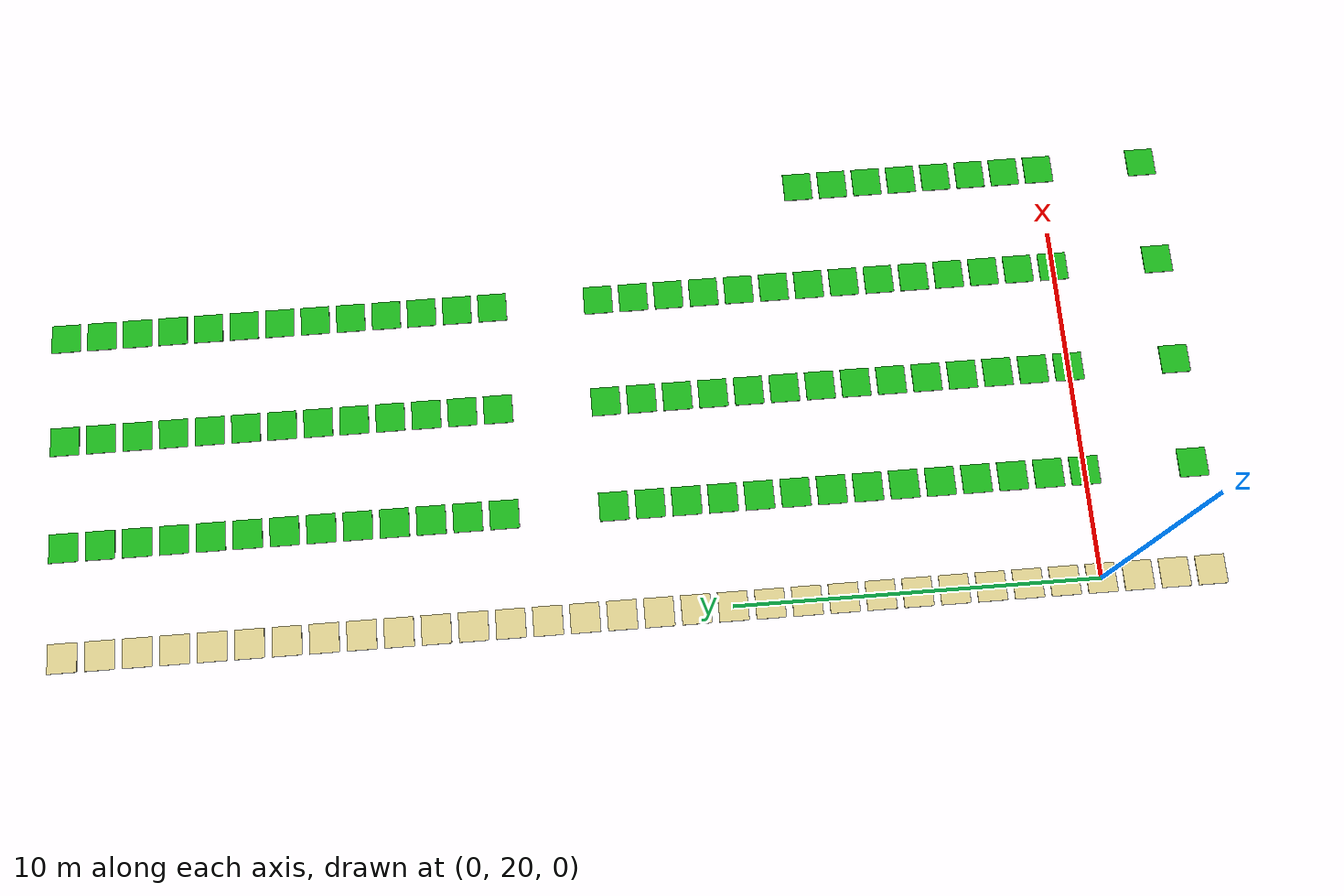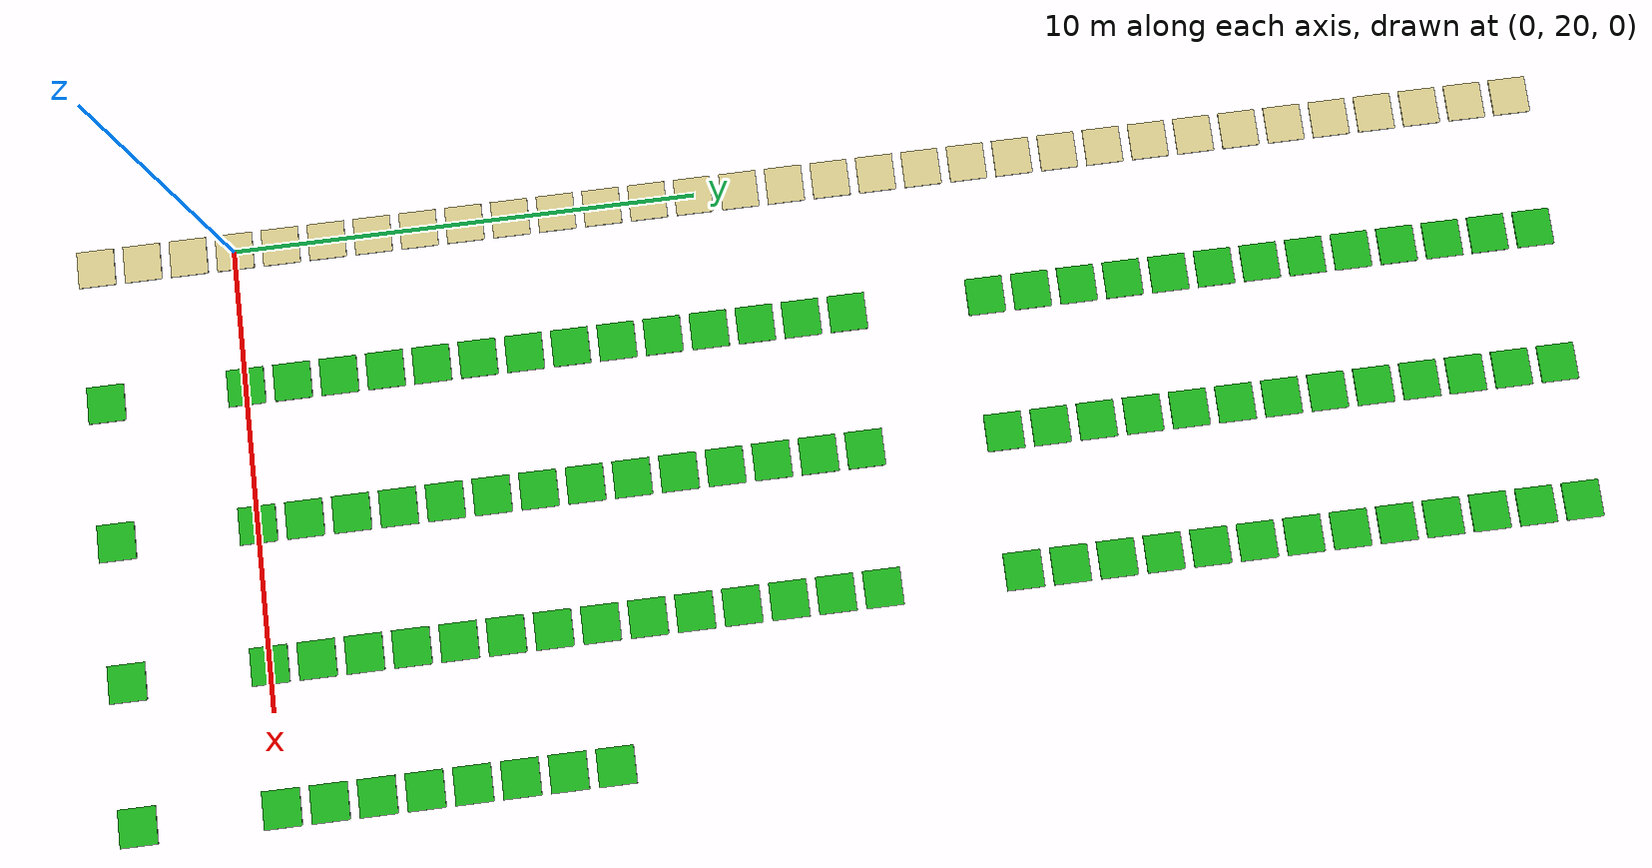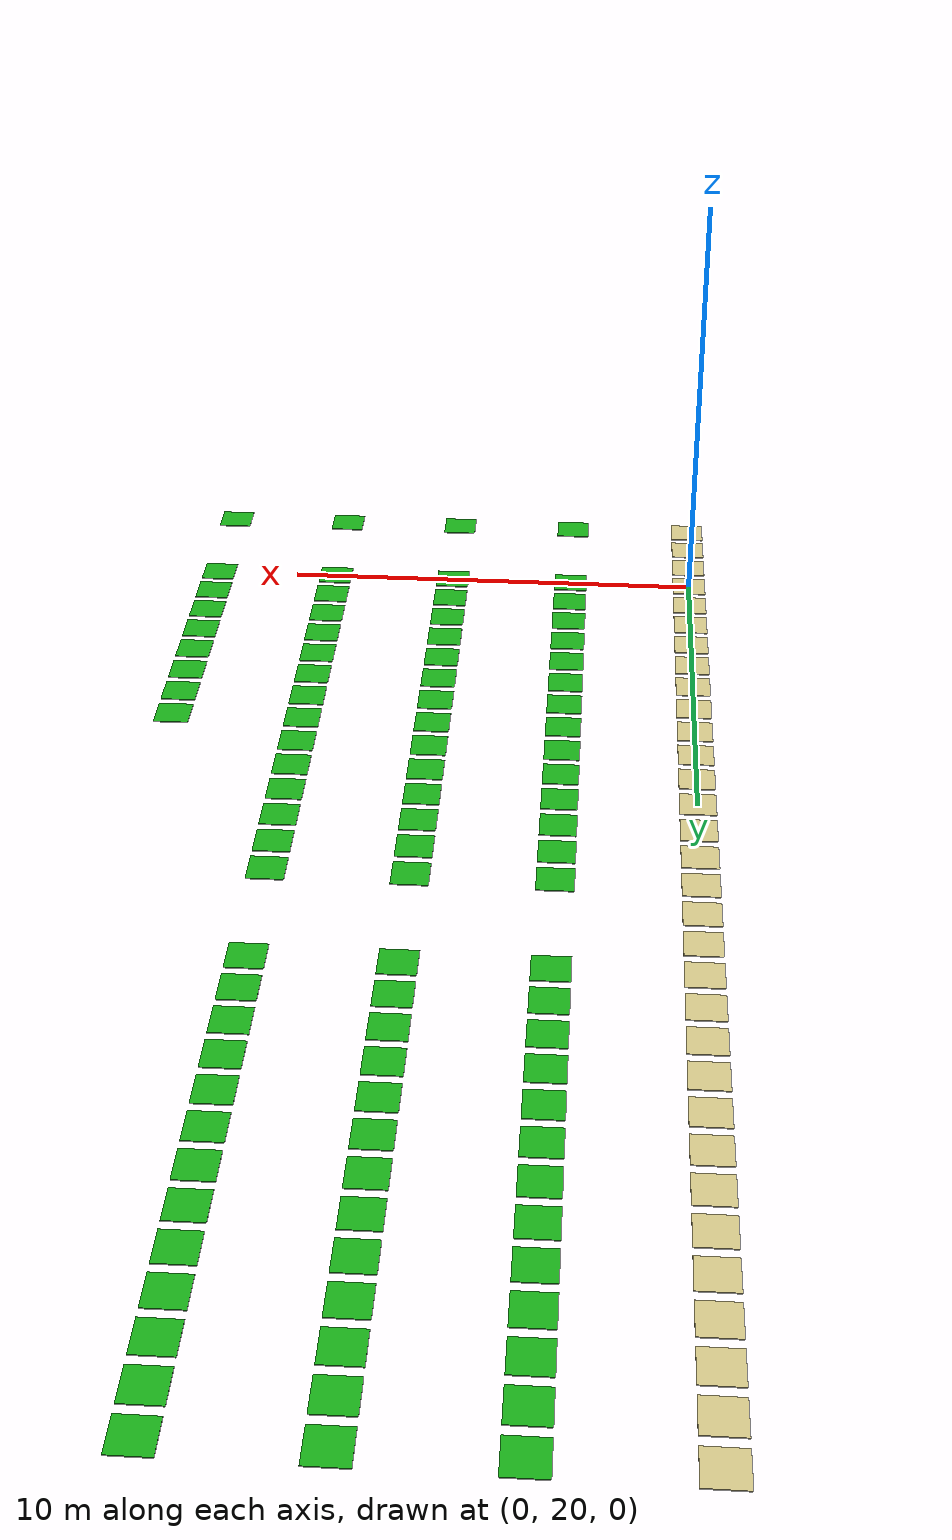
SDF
<sdf version="1.10">
 <world name="my_map">
  <model name="staging_107">
   <static>true</static>
   <pose>0.0
        48.0
        0.02
        0 0 0</pose>
   <link name="link">
    <visual name="visual">
     <geometry><box><size>0.8
                0.8
                0.02</size></box></geometry>
     <material><ambient>0.85 0.80 0.55 1</ambient><diffuse>0.85 0.80 0.55 1</diffuse></material>
    </visual>
   </link>
  </model>
  <model name="shelf_1176">
   <static>true</static>
   <pose>3.0
        48.0
        0.02
        0 0 0</pose>
   <link name="link">
    <visual name="visual">
     <geometry><box><size>0.8
                0.8
                0.02</size></box></geometry>
     <material><ambient>0.10 0.70 0.10 1</ambient><diffuse>0.10 0.70 0.10 1</diffuse></material>
    </visual>
   </link>
  </model>
  <model name="shelf_1177">
   <static>true</static>
   <pose>6.0
        48.0
        0.02
        0 0 0</pose>
   <link name="link">
    <visual name="visual">
     <geometry><box><size>0.8
                0.8
                0.02</size></box></geometry>
     <material><ambient>0.10 0.70 0.10 1</ambient><diffuse>0.10 0.70 0.10 1</diffuse></material>
    </visual>
   </link>
  </model>
  <model name="shelf_1178">
   <static>true</static>
   <pose>9.0
        48.0
        0.02
        0 0 0</pose>
   <link name="link">
    <visual name="visual">
     <geometry><box><size>0.8
                0.8
                0.02</size></box></geometry>
     <material><ambient>0.10 0.70 0.10 1</ambient><diffuse>0.10 0.70 0.10 1</diffuse></material>
    </visual>
   </link>
  </model>
  <model name="staging_109">
   <static>true</static>
   <pose>0.0
        47.0
        0.02
        0 0 0</pose>
   <link name="link">
    <visual name="visual">
     <geometry><box><size>0.8
                0.8
                0.02</size></box></geometry>
     <material><ambient>0.85 0.80 0.55 1</ambient><diffuse>0.85 0.80 0.55 1</diffuse></material>
    </visual>
   </link>
  </model>
  <model name="shelf_1201">
   <static>true</static>
   <pose>3.0
        47.0
        0.02
        0 0 0</pose>
   <link name="link">
    <visual name="visual">
     <geometry><box><size>0.8
                0.8
                0.02</size></box></geometry>
     <material><ambient>0.10 0.70 0.10 1</ambient><diffuse>0.10 0.70 0.10 1</diffuse></material>
    </visual>
   </link>
  </model>
  <model name="shelf_1202">
   <static>true</static>
   <pose>6.0
        47.0
        0.02
        0 0 0</pose>
   <link name="link">
    <visual name="visual">
     <geometry><box><size>0.8
                0.8
                0.02</size></box></geometry>
     <material><ambient>0.10 0.70 0.10 1</ambient><diffuse>0.10 0.70 0.10 1</diffuse></material>
    </visual>
   </link>
  </model>
  <model name="shelf_1203">
   <static>true</static>
   <pose>9.0
        47.0
        0.02
        0 0 0</pose>
   <link name="link">
    <visual name="visual">
     <geometry><box><size>0.8
                0.8
                0.02</size></box></geometry>
     <material><ambient>0.10 0.70 0.10 1</ambient><diffuse>0.10 0.70 0.10 1</diffuse></material>
    </visual>
   </link>
  </model>
  <model name="staging_111">
   <static>true</static>
   <pose>0.0
        46.0
        0.02
        0 0 0</pose>
   <link name="link">
    <visual name="visual">
     <geometry><box><size>0.8
                0.8
                0.02</size></box></geometry>
     <material><ambient>0.85 0.80 0.55 1</ambient><diffuse>0.85 0.80 0.55 1</diffuse></material>
    </visual>
   </link>
  </model>
  <model name="shelf_1226">
   <static>true</static>
   <pose>3.0
        46.0
        0.02
        0 0 0</pose>
   <link name="link">
    <visual name="visual">
     <geometry><box><size>0.8
                0.8
                0.02</size></box></geometry>
     <material><ambient>0.10 0.70 0.10 1</ambient><diffuse>0.10 0.70 0.10 1</diffuse></material>
    </visual>
   </link>
  </model>
  <model name="shelf_1227">
   <static>true</static>
   <pose>6.0
        46.0
        0.02
        0 0 0</pose>
   <link name="link">
    <visual name="visual">
     <geometry><box><size>0.8
                0.8
                0.02</size></box></geometry>
     <material><ambient>0.10 0.70 0.10 1</ambient><diffuse>0.10 0.70 0.10 1</diffuse></material>
    </visual>
   </link>
  </model>
  <model name="shelf_1228">
   <static>true</static>
   <pose>9.0
        46.0
        0.02
        0 0 0</pose>
   <link name="link">
    <visual name="visual">
     <geometry><box><size>0.8
                0.8
                0.02</size></box></geometry>
     <material><ambient>0.10 0.70 0.10 1</ambient><diffuse>0.10 0.70 0.10 1</diffuse></material>
    </visual>
   </link>
  </model>
  <model name="staging_113">
   <static>true</static>
   <pose>0.0
        45.0
        0.02
        0 0 0</pose>
   <link name="link">
    <visual name="visual">
     <geometry><box><size>0.8
                0.8
                0.02</size></box></geometry>
     <material><ambient>0.85 0.80 0.55 1</ambient><diffuse>0.85 0.80 0.55 1</diffuse></material>
    </visual>
   </link>
  </model>
  <model name="shelf_1251">
   <static>true</static>
   <pose>3.0
        45.0
        0.02
        0 0 0</pose>
   <link name="link">
    <visual name="visual">
     <geometry><box><size>0.8
                0.8
                0.02</size></box></geometry>
     <material><ambient>0.10 0.70 0.10 1</ambient><diffuse>0.10 0.70 0.10 1</diffuse></material>
    </visual>
   </link>
  </model>
  <model name="shelf_1252">
   <static>true</static>
   <pose>6.0
        45.0
        0.02
        0 0 0</pose>
   <link name="link">
    <visual name="visual">
     <geometry><box><size>0.8
                0.8
                0.02</size></box></geometry>
     <material><ambient>0.10 0.70 0.10 1</ambient><diffuse>0.10 0.70 0.10 1</diffuse></material>
    </visual>
   </link>
  </model>
  <model name="shelf_1253">
   <static>true</static>
   <pose>9.0
        45.0
        0.02
        0 0 0</pose>
   <link name="link">
    <visual name="visual">
     <geometry><box><size>0.8
                0.8
                0.02</size></box></geometry>
     <material><ambient>0.10 0.70 0.10 1</ambient><diffuse>0.10 0.70 0.10 1</diffuse></material>
    </visual>
   </link>
  </model>
  <model name="staging_115">
   <static>true</static>
   <pose>0.0
        44.0
        0.02
        0 0 0</pose>
   <link name="link">
    <visual name="visual">
     <geometry><box><size>0.8
                0.8
                0.02</size></box></geometry>
     <material><ambient>0.85 0.80 0.55 1</ambient><diffuse>0.85 0.80 0.55 1</diffuse></material>
    </visual>
   </link>
  </model>
  <model name="shelf_1276">
   <static>true</static>
   <pose>3.0
        44.0
        0.02
        0 0 0</pose>
   <link name="link">
    <visual name="visual">
     <geometry><box><size>0.8
                0.8
                0.02</size></box></geometry>
     <material><ambient>0.10 0.70 0.10 1</ambient><diffuse>0.10 0.70 0.10 1</diffuse></material>
    </visual>
   </link>
  </model>
  <model name="shelf_1277">
   <static>true</static>
   <pose>6.0
        44.0
        0.02
        0 0 0</pose>
   <link name="link">
    <visual name="visual">
     <geometry><box><size>0.8
                0.8
                0.02</size></box></geometry>
     <material><ambient>0.10 0.70 0.10 1</ambient><diffuse>0.10 0.70 0.10 1</diffuse></material>
    </visual>
   </link>
  </model>
  <model name="shelf_1278">
   <static>true</static>
   <pose>9.0
        44.0
        0.02
        0 0 0</pose>
   <link name="link">
    <visual name="visual">
     <geometry><box><size>0.8
                0.8
                0.02</size></box></geometry>
     <material><ambient>0.10 0.70 0.10 1</ambient><diffuse>0.10 0.70 0.10 1</diffuse></material>
    </visual>
   </link>
  </model>
  <model name="staging_117">
   <static>true</static>
   <pose>0.0
        43.0
        0.02
        0 0 0</pose>
   <link name="link">
    <visual name="visual">
     <geometry><box><size>0.8
                0.8
                0.02</size></box></geometry>
     <material><ambient>0.85 0.80 0.55 1</ambient><diffuse>0.85 0.80 0.55 1</diffuse></material>
    </visual>
   </link>
  </model>
  <model name="shelf_1301">
   <static>true</static>
   <pose>3.0
        43.0
        0.02
        0 0 0</pose>
   <link name="link">
    <visual name="visual">
     <geometry><box><size>0.8
                0.8
                0.02</size></box></geometry>
     <material><ambient>0.10 0.70 0.10 1</ambient><diffuse>0.10 0.70 0.10 1</diffuse></material>
    </visual>
   </link>
  </model>
  <model name="shelf_1302">
   <static>true</static>
   <pose>6.0
        43.0
        0.02
        0 0 0</pose>
   <link name="link">
    <visual name="visual">
     <geometry><box><size>0.8
                0.8
                0.02</size></box></geometry>
     <material><ambient>0.10 0.70 0.10 1</ambient><diffuse>0.10 0.70 0.10 1</diffuse></material>
    </visual>
   </link>
  </model>
  <model name="shelf_1303">
   <static>true</static>
   <pose>9.0
        43.0
        0.02
        0 0 0</pose>
   <link name="link">
    <visual name="visual">
     <geometry><box><size>0.8
                0.8
                0.02</size></box></geometry>
     <material><ambient>0.10 0.70 0.10 1</ambient><diffuse>0.10 0.70 0.10 1</diffuse></material>
    </visual>
   </link>
  </model>
  <model name="staging_119">
   <static>true</static>
   <pose>0.0
        42.0
        0.02
        0 0 0</pose>
   <link name="link">
    <visual name="visual">
     <geometry><box><size>0.8
                0.8
                0.02</size></box></geometry>
     <material><ambient>0.85 0.80 0.55 1</ambient><diffuse>0.85 0.80 0.55 1</diffuse></material>
    </visual>
   </link>
  </model>
  <model name="shelf_1326">
   <static>true</static>
   <pose>3.0
        42.0
        0.02
        0 0 0</pose>
   <link name="link">
    <visual name="visual">
     <geometry><box><size>0.8
                0.8
                0.02</size></box></geometry>
     <material><ambient>0.10 0.70 0.10 1</ambient><diffuse>0.10 0.70 0.10 1</diffuse></material>
    </visual>
   </link>
  </model>
  <model name="shelf_1327">
   <static>true</static>
   <pose>6.0
        42.0
        0.02
        0 0 0</pose>
   <link name="link">
    <visual name="visual">
     <geometry><box><size>0.8
                0.8
                0.02</size></box></geometry>
     <material><ambient>0.10 0.70 0.10 1</ambient><diffuse>0.10 0.70 0.10 1</diffuse></material>
    </visual>
   </link>
  </model>
  <model name="shelf_1328">
   <static>true</static>
   <pose>9.0
        42.0
        0.02
        0 0 0</pose>
   <link name="link">
    <visual name="visual">
     <geometry><box><size>0.8
                0.8
                0.02</size></box></geometry>
     <material><ambient>0.10 0.70 0.10 1</ambient><diffuse>0.10 0.70 0.10 1</diffuse></material>
    </visual>
   </link>
  </model>
  <model name="staging_121">
   <static>true</static>
   <pose>0.0
        41.0
        0.02
        0 0 0</pose>
   <link name="link">
    <visual name="visual">
     <geometry><box><size>0.8
                0.8
                0.02</size></box></geometry>
     <material><ambient>0.85 0.80 0.55 1</ambient><diffuse>0.85 0.80 0.55 1</diffuse></material>
    </visual>
   </link>
  </model>
  <model name="shelf_1351">
   <static>true</static>
   <pose>3.0
        41.0
        0.02
        0 0 0</pose>
   <link name="link">
    <visual name="visual">
     <geometry><box><size>0.8
                0.8
                0.02</size></box></geometry>
     <material><ambient>0.10 0.70 0.10 1</ambient><diffuse>0.10 0.70 0.10 1</diffuse></material>
    </visual>
   </link>
  </model>
  <model name="shelf_1352">
   <static>true</static>
   <pose>6.0
        41.0
        0.02
        0 0 0</pose>
   <link name="link">
    <visual name="visual">
     <geometry><box><size>0.8
                0.8
                0.02</size></box></geometry>
     <material><ambient>0.10 0.70 0.10 1</ambient><diffuse>0.10 0.70 0.10 1</diffuse></material>
    </visual>
   </link>
  </model>
  <model name="shelf_1353">
   <static>true</static>
   <pose>9.0
        41.0
        0.02
        0 0 0</pose>
   <link name="link">
    <visual name="visual">
     <geometry><box><size>0.8
                0.8
                0.02</size></box></geometry>
     <material><ambient>0.10 0.70 0.10 1</ambient><diffuse>0.10 0.70 0.10 1</diffuse></material>
    </visual>
   </link>
  </model>
  <model name="staging_123">
   <static>true</static>
   <pose>0.0
        40.0
        0.02
        0 0 0</pose>
   <link name="link">
    <visual name="visual">
     <geometry><box><size>0.8
                0.8
                0.02</size></box></geometry>
     <material><ambient>0.85 0.80 0.55 1</ambient><diffuse>0.85 0.80 0.55 1</diffuse></material>
    </visual>
   </link>
  </model>
  <model name="shelf_1376">
   <static>true</static>
   <pose>3.0
        40.0
        0.02
        0 0 0</pose>
   <link name="link">
    <visual name="visual">
     <geometry><box><size>0.8
                0.8
                0.02</size></box></geometry>
     <material><ambient>0.10 0.70 0.10 1</ambient><diffuse>0.10 0.70 0.10 1</diffuse></material>
    </visual>
   </link>
  </model>
  <model name="shelf_1377">
   <static>true</static>
   <pose>6.0
        40.0
        0.02
        0 0 0</pose>
   <link name="link">
    <visual name="visual">
     <geometry><box><size>0.8
                0.8
                0.02</size></box></geometry>
     <material><ambient>0.10 0.70 0.10 1</ambient><diffuse>0.10 0.70 0.10 1</diffuse></material>
    </visual>
   </link>
  </model>
  <model name="shelf_1378">
   <static>true</static>
   <pose>9.0
        40.0
        0.02
        0 0 0</pose>
   <link name="link">
    <visual name="visual">
     <geometry><box><size>0.8
                0.8
                0.02</size></box></geometry>
     <material><ambient>0.10 0.70 0.10 1</ambient><diffuse>0.10 0.70 0.10 1</diffuse></material>
    </visual>
   </link>
  </model>
  <model name="staging_125">
   <static>true</static>
   <pose>0.0
        39.0
        0.02
        0 0 0</pose>
   <link name="link">
    <visual name="visual">
     <geometry><box><size>0.8
                0.8
                0.02</size></box></geometry>
     <material><ambient>0.85 0.80 0.55 1</ambient><diffuse>0.85 0.80 0.55 1</diffuse></material>
    </visual>
   </link>
  </model>
  <model name="shelf_1401">
   <static>true</static>
   <pose>3.0
        39.0
        0.02
        0 0 0</pose>
   <link name="link">
    <visual name="visual">
     <geometry><box><size>0.8
                0.8
                0.02</size></box></geometry>
     <material><ambient>0.10 0.70 0.10 1</ambient><diffuse>0.10 0.70 0.10 1</diffuse></material>
    </visual>
   </link>
  </model>
  <model name="shelf_1402">
   <static>true</static>
   <pose>6.0
        39.0
        0.02
        0 0 0</pose>
   <link name="link">
    <visual name="visual">
     <geometry><box><size>0.8
                0.8
                0.02</size></box></geometry>
     <material><ambient>0.10 0.70 0.10 1</ambient><diffuse>0.10 0.70 0.10 1</diffuse></material>
    </visual>
   </link>
  </model>
  <model name="shelf_1403">
   <static>true</static>
   <pose>9.0
        39.0
        0.02
        0 0 0</pose>
   <link name="link">
    <visual name="visual">
     <geometry><box><size>0.8
                0.8
                0.02</size></box></geometry>
     <material><ambient>0.10 0.70 0.10 1</ambient><diffuse>0.10 0.70 0.10 1</diffuse></material>
    </visual>
   </link>
  </model>
  <model name="staging_127">
   <static>true</static>
   <pose>0.0
        38.0
        0.02
        0 0 0</pose>
   <link name="link">
    <visual name="visual">
     <geometry><box><size>0.8
                0.8
                0.02</size></box></geometry>
     <material><ambient>0.85 0.80 0.55 1</ambient><diffuse>0.85 0.80 0.55 1</diffuse></material>
    </visual>
   </link>
  </model>
  <model name="shelf_1426">
   <static>true</static>
   <pose>3.0
        38.0
        0.02
        0 0 0</pose>
   <link name="link">
    <visual name="visual">
     <geometry><box><size>0.8
                0.8
                0.02</size></box></geometry>
     <material><ambient>0.10 0.70 0.10 1</ambient><diffuse>0.10 0.70 0.10 1</diffuse></material>
    </visual>
   </link>
  </model>
  <model name="shelf_1427">
   <static>true</static>
   <pose>6.0
        38.0
        0.02
        0 0 0</pose>
   <link name="link">
    <visual name="visual">
     <geometry><box><size>0.8
                0.8
                0.02</size></box></geometry>
     <material><ambient>0.10 0.70 0.10 1</ambient><diffuse>0.10 0.70 0.10 1</diffuse></material>
    </visual>
   </link>
  </model>
  <model name="shelf_1428">
   <static>true</static>
   <pose>9.0
        38.0
        0.02
        0 0 0</pose>
   <link name="link">
    <visual name="visual">
     <geometry><box><size>0.8
                0.8
                0.02</size></box></geometry>
     <material><ambient>0.10 0.70 0.10 1</ambient><diffuse>0.10 0.70 0.10 1</diffuse></material>
    </visual>
   </link>
  </model>
  <model name="staging_129">
   <static>true</static>
   <pose>0.0
        37.0
        0.02
        0 0 0</pose>
   <link name="link">
    <visual name="visual">
     <geometry><box><size>0.8
                0.8
                0.02</size></box></geometry>
     <material><ambient>0.85 0.80 0.55 1</ambient><diffuse>0.85 0.80 0.55 1</diffuse></material>
    </visual>
   </link>
  </model>
  <model name="shelf_1451">
   <static>true</static>
   <pose>3.0
        37.0
        0.02
        0 0 0</pose>
   <link name="link">
    <visual name="visual">
     <geometry><box><size>0.8
                0.8
                0.02</size></box></geometry>
     <material><ambient>0.10 0.70 0.10 1</ambient><diffuse>0.10 0.70 0.10 1</diffuse></material>
    </visual>
   </link>
  </model>
  <model name="shelf_1452">
   <static>true</static>
   <pose>6.0
        37.0
        0.02
        0 0 0</pose>
   <link name="link">
    <visual name="visual">
     <geometry><box><size>0.8
                0.8
                0.02</size></box></geometry>
     <material><ambient>0.10 0.70 0.10 1</ambient><diffuse>0.10 0.70 0.10 1</diffuse></material>
    </visual>
   </link>
  </model>
  <model name="shelf_1453">
   <static>true</static>
   <pose>9.0
        37.0
        0.02
        0 0 0</pose>
   <link name="link">
    <visual name="visual">
     <geometry><box><size>0.8
                0.8
                0.02</size></box></geometry>
     <material><ambient>0.10 0.70 0.10 1</ambient><diffuse>0.10 0.70 0.10 1</diffuse></material>
    </visual>
   </link>
  </model>
  <model name="staging_131">
   <static>true</static>
   <pose>0.0
        36.0
        0.02
        0 0 0</pose>
   <link name="link">
    <visual name="visual">
     <geometry><box><size>0.8
                0.8
                0.02</size></box></geometry>
     <material><ambient>0.85 0.80 0.55 1</ambient><diffuse>0.85 0.80 0.55 1</diffuse></material>
    </visual>
   </link>
  </model>
  <model name="shelf_1476">
   <static>true</static>
   <pose>3.0
        36.0
        0.02
        0 0 0</pose>
   <link name="link">
    <visual name="visual">
     <geometry><box><size>0.8
                0.8
                0.02</size></box></geometry>
     <material><ambient>0.10 0.70 0.10 1</ambient><diffuse>0.10 0.70 0.10 1</diffuse></material>
    </visual>
   </link>
  </model>
  <model name="shelf_1477">
   <static>true</static>
   <pose>6.0
        36.0
        0.02
        0 0 0</pose>
   <link name="link">
    <visual name="visual">
     <geometry><box><size>0.8
                0.8
                0.02</size></box></geometry>
     <material><ambient>0.10 0.70 0.10 1</ambient><diffuse>0.10 0.70 0.10 1</diffuse></material>
    </visual>
   </link>
  </model>
  <model name="shelf_1478">
   <static>true</static>
   <pose>9.0
        36.0
        0.02
        0 0 0</pose>
   <link name="link">
    <visual name="visual">
     <geometry><box><size>0.8
                0.8
                0.02</size></box></geometry>
     <material><ambient>0.10 0.70 0.10 1</ambient><diffuse>0.10 0.70 0.10 1</diffuse></material>
    </visual>
   </link>
  </model>
  <model name="staging_133">
   <static>true</static>
   <pose>0.0
        35.0
        0.02
        0 0 0</pose>
   <link name="link">
    <visual name="visual">
     <geometry><box><size>0.8
                0.8
                0.02</size></box></geometry>
     <material><ambient>0.85 0.80 0.55 1</ambient><diffuse>0.85 0.80 0.55 1</diffuse></material>
    </visual>
   </link>
  </model>
  <model name="staging_135">
   <static>true</static>
   <pose>0.0
        34.0
        0.02
        0 0 0</pose>
   <link name="link">
    <visual name="visual">
     <geometry><box><size>0.8
                0.8
                0.02</size></box></geometry>
     <material><ambient>0.85 0.80 0.55 1</ambient><diffuse>0.85 0.80 0.55 1</diffuse></material>
    </visual>
   </link>
  </model>
  <model name="staging_137">
   <static>true</static>
   <pose>0.0
        33.0
        0.02
        0 0 0</pose>
   <link name="link">
    <visual name="visual">
     <geometry><box><size>0.8
                0.8
                0.02</size></box></geometry>
     <material><ambient>0.85 0.80 0.55 1</ambient><diffuse>0.85 0.80 0.55 1</diffuse></material>
    </visual>
   </link>
  </model>
  <model name="shelf_1501">
   <static>true</static>
   <pose>3.0
        33.0
        0.02
        0 0 0</pose>
   <link name="link">
    <visual name="visual">
     <geometry><box><size>0.8
                0.8
                0.02</size></box></geometry>
     <material><ambient>0.10 0.70 0.10 1</ambient><diffuse>0.10 0.70 0.10 1</diffuse></material>
    </visual>
   </link>
  </model>
  <model name="shelf_1502">
   <static>true</static>
   <pose>6.0
        33.0
        0.02
        0 0 0</pose>
   <link name="link">
    <visual name="visual">
     <geometry><box><size>0.8
                0.8
                0.02</size></box></geometry>
     <material><ambient>0.10 0.70 0.10 1</ambient><diffuse>0.10 0.70 0.10 1</diffuse></material>
    </visual>
   </link>
  </model>
  <model name="shelf_1503">
   <static>true</static>
   <pose>9.0
        33.0
        0.02
        0 0 0</pose>
   <link name="link">
    <visual name="visual">
     <geometry><box><size>0.8
                0.8
                0.02</size></box></geometry>
     <material><ambient>0.10 0.70 0.10 1</ambient><diffuse>0.10 0.70 0.10 1</diffuse></material>
    </visual>
   </link>
  </model>
  <model name="staging_139">
   <static>true</static>
   <pose>0.0
        32.0
        0.02
        0 0 0</pose>
   <link name="link">
    <visual name="visual">
     <geometry><box><size>0.8
                0.8
                0.02</size></box></geometry>
     <material><ambient>0.85 0.80 0.55 1</ambient><diffuse>0.85 0.80 0.55 1</diffuse></material>
    </visual>
   </link>
  </model>
  <model name="shelf_1526">
   <static>true</static>
   <pose>3.0
        32.0
        0.02
        0 0 0</pose>
   <link name="link">
    <visual name="visual">
     <geometry><box><size>0.8
                0.8
                0.02</size></box></geometry>
     <material><ambient>0.10 0.70 0.10 1</ambient><diffuse>0.10 0.70 0.10 1</diffuse></material>
    </visual>
   </link>
  </model>
  <model name="shelf_1527">
   <static>true</static>
   <pose>6.0
        32.0
        0.02
        0 0 0</pose>
   <link name="link">
    <visual name="visual">
     <geometry><box><size>0.8
                0.8
                0.02</size></box></geometry>
     <material><ambient>0.10 0.70 0.10 1</ambient><diffuse>0.10 0.70 0.10 1</diffuse></material>
    </visual>
   </link>
  </model>
  <model name="shelf_1528">
   <static>true</static>
   <pose>9.0
        32.0
        0.02
        0 0 0</pose>
   <link name="link">
    <visual name="visual">
     <geometry><box><size>0.8
                0.8
                0.02</size></box></geometry>
     <material><ambient>0.10 0.70 0.10 1</ambient><diffuse>0.10 0.70 0.10 1</diffuse></material>
    </visual>
   </link>
  </model>
  <model name="staging_141">
   <static>true</static>
   <pose>0.0
        31.0
        0.02
        0 0 0</pose>
   <link name="link">
    <visual name="visual">
     <geometry><box><size>0.8
                0.8
                0.02</size></box></geometry>
     <material><ambient>0.85 0.80 0.55 1</ambient><diffuse>0.85 0.80 0.55 1</diffuse></material>
    </visual>
   </link>
  </model>
  <model name="shelf_1551">
   <static>true</static>
   <pose>3.0
        31.0
        0.02
        0 0 0</pose>
   <link name="link">
    <visual name="visual">
     <geometry><box><size>0.8
                0.8
                0.02</size></box></geometry>
     <material><ambient>0.10 0.70 0.10 1</ambient><diffuse>0.10 0.70 0.10 1</diffuse></material>
    </visual>
   </link>
  </model>
  <model name="shelf_1552">
   <static>true</static>
   <pose>6.0
        31.0
        0.02
        0 0 0</pose>
   <link name="link">
    <visual name="visual">
     <geometry><box><size>0.8
                0.8
                0.02</size></box></geometry>
     <material><ambient>0.10 0.70 0.10 1</ambient><diffuse>0.10 0.70 0.10 1</diffuse></material>
    </visual>
   </link>
  </model>
  <model name="shelf_1553">
   <static>true</static>
   <pose>9.0
        31.0
        0.02
        0 0 0</pose>
   <link name="link">
    <visual name="visual">
     <geometry><box><size>0.8
                0.8
                0.02</size></box></geometry>
     <material><ambient>0.10 0.70 0.10 1</ambient><diffuse>0.10 0.70 0.10 1</diffuse></material>
    </visual>
   </link>
  </model>
  <model name="staging_143">
   <static>true</static>
   <pose>0.0
        30.0
        0.02
        0 0 0</pose>
   <link name="link">
    <visual name="visual">
     <geometry><box><size>0.8
                0.8
                0.02</size></box></geometry>
     <material><ambient>0.85 0.80 0.55 1</ambient><diffuse>0.85 0.80 0.55 1</diffuse></material>
    </visual>
   </link>
  </model>
  <model name="shelf_1576">
   <static>true</static>
   <pose>3.0
        30.0
        0.02
        0 0 0</pose>
   <link name="link">
    <visual name="visual">
     <geometry><box><size>0.8
                0.8
                0.02</size></box></geometry>
     <material><ambient>0.10 0.70 0.10 1</ambient><diffuse>0.10 0.70 0.10 1</diffuse></material>
    </visual>
   </link>
  </model>
  <model name="shelf_1577">
   <static>true</static>
   <pose>6.0
        30.0
        0.02
        0 0 0</pose>
   <link name="link">
    <visual name="visual">
     <geometry><box><size>0.8
                0.8
                0.02</size></box></geometry>
     <material><ambient>0.10 0.70 0.10 1</ambient><diffuse>0.10 0.70 0.10 1</diffuse></material>
    </visual>
   </link>
  </model>
  <model name="shelf_1578">
   <static>true</static>
   <pose>9.0
        30.0
        0.02
        0 0 0</pose>
   <link name="link">
    <visual name="visual">
     <geometry><box><size>0.8
                0.8
                0.02</size></box></geometry>
     <material><ambient>0.10 0.70 0.10 1</ambient><diffuse>0.10 0.70 0.10 1</diffuse></material>
    </visual>
   </link>
  </model>
  <model name="staging_145">
   <static>true</static>
   <pose>0.0
        29.0
        0.02
        0 0 0</pose>
   <link name="link">
    <visual name="visual">
     <geometry><box><size>0.8
                0.8
                0.02</size></box></geometry>
     <material><ambient>0.85 0.80 0.55 1</ambient><diffuse>0.85 0.80 0.55 1</diffuse></material>
    </visual>
   </link>
  </model>
  <model name="shelf_1601">
   <static>true</static>
   <pose>3.0
        29.0
        0.02
        0 0 0</pose>
   <link name="link">
    <visual name="visual">
     <geometry><box><size>0.8
                0.8
                0.02</size></box></geometry>
     <material><ambient>0.10 0.70 0.10 1</ambient><diffuse>0.10 0.70 0.10 1</diffuse></material>
    </visual>
   </link>
  </model>
  <model name="shelf_1602">
   <static>true</static>
   <pose>6.0
        29.0
        0.02
        0 0 0</pose>
   <link name="link">
    <visual name="visual">
     <geometry><box><size>0.8
                0.8
                0.02</size></box></geometry>
     <material><ambient>0.10 0.70 0.10 1</ambient><diffuse>0.10 0.70 0.10 1</diffuse></material>
    </visual>
   </link>
  </model>
  <model name="shelf_1603">
   <static>true</static>
   <pose>9.0
        29.0
        0.02
        0 0 0</pose>
   <link name="link">
    <visual name="visual">
     <geometry><box><size>0.8
                0.8
                0.02</size></box></geometry>
     <material><ambient>0.10 0.70 0.10 1</ambient><diffuse>0.10 0.70 0.10 1</diffuse></material>
    </visual>
   </link>
  </model>
  <model name="staging_147">
   <static>true</static>
   <pose>0.0
        28.0
        0.02
        0 0 0</pose>
   <link name="link">
    <visual name="visual">
     <geometry><box><size>0.8
                0.8
                0.02</size></box></geometry>
     <material><ambient>0.85 0.80 0.55 1</ambient><diffuse>0.85 0.80 0.55 1</diffuse></material>
    </visual>
   </link>
  </model>
  <model name="shelf_1626">
   <static>true</static>
   <pose>3.0
        28.0
        0.02
        0 0 0</pose>
   <link name="link">
    <visual name="visual">
     <geometry><box><size>0.8
                0.8
                0.02</size></box></geometry>
     <material><ambient>0.10 0.70 0.10 1</ambient><diffuse>0.10 0.70 0.10 1</diffuse></material>
    </visual>
   </link>
  </model>
  <model name="shelf_1627">
   <static>true</static>
   <pose>6.0
        28.0
        0.02
        0 0 0</pose>
   <link name="link">
    <visual name="visual">
     <geometry><box><size>0.8
                0.8
                0.02</size></box></geometry>
     <material><ambient>0.10 0.70 0.10 1</ambient><diffuse>0.10 0.70 0.10 1</diffuse></material>
    </visual>
   </link>
  </model>
  <model name="shelf_1628">
   <static>true</static>
   <pose>9.0
        28.0
        0.02
        0 0 0</pose>
   <link name="link">
    <visual name="visual">
     <geometry><box><size>0.8
                0.8
                0.02</size></box></geometry>
     <material><ambient>0.10 0.70 0.10 1</ambient><diffuse>0.10 0.70 0.10 1</diffuse></material>
    </visual>
   </link>
  </model>
  <model name="staging_149">
   <static>true</static>
   <pose>0.0
        27.0
        0.02
        0 0 0</pose>
   <link name="link">
    <visual name="visual">
     <geometry><box><size>0.8
                0.8
                0.02</size></box></geometry>
     <material><ambient>0.85 0.80 0.55 1</ambient><diffuse>0.85 0.80 0.55 1</diffuse></material>
    </visual>
   </link>
  </model>
  <model name="shelf_1651">
   <static>true</static>
   <pose>3.0
        27.0
        0.02
        0 0 0</pose>
   <link name="link">
    <visual name="visual">
     <geometry><box><size>0.8
                0.8
                0.02</size></box></geometry>
     <material><ambient>0.10 0.70 0.10 1</ambient><diffuse>0.10 0.70 0.10 1</diffuse></material>
    </visual>
   </link>
  </model>
  <model name="shelf_1652">
   <static>true</static>
   <pose>6.0
        27.0
        0.02
        0 0 0</pose>
   <link name="link">
    <visual name="visual">
     <geometry><box><size>0.8
                0.8
                0.02</size></box></geometry>
     <material><ambient>0.10 0.70 0.10 1</ambient><diffuse>0.10 0.70 0.10 1</diffuse></material>
    </visual>
   </link>
  </model>
  <model name="shelf_1653">
   <static>true</static>
   <pose>9.0
        27.0
        0.02
        0 0 0</pose>
   <link name="link">
    <visual name="visual">
     <geometry><box><size>0.8
                0.8
                0.02</size></box></geometry>
     <material><ambient>0.10 0.70 0.10 1</ambient><diffuse>0.10 0.70 0.10 1</diffuse></material>
    </visual>
   </link>
  </model>
  <model name="shelf_1654">
   <static>true</static>
   <pose>12.0
        27.0
        0.02
        0 0 0</pose>
   <link name="link">
    <visual name="visual">
     <geometry><box><size>0.8
                0.8
                0.02</size></box></geometry>
     <material><ambient>0.10 0.70 0.10 1</ambient><diffuse>0.10 0.70 0.10 1</diffuse></material>
    </visual>
   </link>
  </model>
  <model name="staging_151">
   <static>true</static>
   <pose>0.0
        26.0
        0.02
        0 0 0</pose>
   <link name="link">
    <visual name="visual">
     <geometry><box><size>0.8
                0.8
                0.02</size></box></geometry>
     <material><ambient>0.85 0.80 0.55 1</ambient><diffuse>0.85 0.80 0.55 1</diffuse></material>
    </visual>
   </link>
  </model>
  <model name="shelf_1676">
   <static>true</static>
   <pose>3.0
        26.0
        0.02
        0 0 0</pose>
   <link name="link">
    <visual name="visual">
     <geometry><box><size>0.8
                0.8
                0.02</size></box></geometry>
     <material><ambient>0.10 0.70 0.10 1</ambient><diffuse>0.10 0.70 0.10 1</diffuse></material>
    </visual>
   </link>
  </model>
  <model name="shelf_1677">
   <static>true</static>
   <pose>6.0
        26.0
        0.02
        0 0 0</pose>
   <link name="link">
    <visual name="visual">
     <geometry><box><size>0.8
                0.8
                0.02</size></box></geometry>
     <material><ambient>0.10 0.70 0.10 1</ambient><diffuse>0.10 0.70 0.10 1</diffuse></material>
    </visual>
   </link>
  </model>
  <model name="shelf_1678">
   <static>true</static>
   <pose>9.0
        26.0
        0.02
        0 0 0</pose>
   <link name="link">
    <visual name="visual">
     <geometry><box><size>0.8
                0.8
                0.02</size></box></geometry>
     <material><ambient>0.10 0.70 0.10 1</ambient><diffuse>0.10 0.70 0.10 1</diffuse></material>
    </visual>
   </link>
  </model>
  <model name="shelf_1679">
   <static>true</static>
   <pose>12.0
        26.0
        0.02
        0 0 0</pose>
   <link name="link">
    <visual name="visual">
     <geometry><box><size>0.8
                0.8
                0.02</size></box></geometry>
     <material><ambient>0.10 0.70 0.10 1</ambient><diffuse>0.10 0.70 0.10 1</diffuse></material>
    </visual>
   </link>
  </model>
  <model name="staging_153">
   <static>true</static>
   <pose>0.0
        25.0
        0.02
        0 0 0</pose>
   <link name="link">
    <visual name="visual">
     <geometry><box><size>0.8
                0.8
                0.02</size></box></geometry>
     <material><ambient>0.85 0.80 0.55 1</ambient><diffuse>0.85 0.80 0.55 1</diffuse></material>
    </visual>
   </link>
  </model>
  <model name="shelf_1701">
   <static>true</static>
   <pose>3.0
        25.0
        0.02
        0 0 0</pose>
   <link name="link">
    <visual name="visual">
     <geometry><box><size>0.8
                0.8
                0.02</size></box></geometry>
     <material><ambient>0.10 0.70 0.10 1</ambient><diffuse>0.10 0.70 0.10 1</diffuse></material>
    </visual>
   </link>
  </model>
  <model name="shelf_1702">
   <static>true</static>
   <pose>6.0
        25.0
        0.02
        0 0 0</pose>
   <link name="link">
    <visual name="visual">
     <geometry><box><size>0.8
                0.8
                0.02</size></box></geometry>
     <material><ambient>0.10 0.70 0.10 1</ambient><diffuse>0.10 0.70 0.10 1</diffuse></material>
    </visual>
   </link>
  </model>
  <model name="shelf_1703">
   <static>true</static>
   <pose>9.0
        25.0
        0.02
        0 0 0</pose>
   <link name="link">
    <visual name="visual">
     <geometry><box><size>0.8
                0.8
                0.02</size></box></geometry>
     <material><ambient>0.10 0.70 0.10 1</ambient><diffuse>0.10 0.70 0.10 1</diffuse></material>
    </visual>
   </link>
  </model>
  <model name="shelf_1704">
   <static>true</static>
   <pose>12.0
        25.0
        0.02
        0 0 0</pose>
   <link name="link">
    <visual name="visual">
     <geometry><box><size>0.8
                0.8
                0.02</size></box></geometry>
     <material><ambient>0.10 0.70 0.10 1</ambient><diffuse>0.10 0.70 0.10 1</diffuse></material>
    </visual>
   </link>
  </model>
  <model name="staging_155">
   <static>true</static>
   <pose>0.0
        24.0
        0.02
        0 0 0</pose>
   <link name="link">
    <visual name="visual">
     <geometry><box><size>0.8
                0.8
                0.02</size></box></geometry>
     <material><ambient>0.85 0.80 0.55 1</ambient><diffuse>0.85 0.80 0.55 1</diffuse></material>
    </visual>
   </link>
  </model>
  <model name="shelf_1726">
   <static>true</static>
   <pose>3.0
        24.0
        0.02
        0 0 0</pose>
   <link name="link">
    <visual name="visual">
     <geometry><box><size>0.8
                0.8
                0.02</size></box></geometry>
     <material><ambient>0.10 0.70 0.10 1</ambient><diffuse>0.10 0.70 0.10 1</diffuse></material>
    </visual>
   </link>
  </model>
  <model name="shelf_1727">
   <static>true</static>
   <pose>6.0
        24.0
        0.02
        0 0 0</pose>
   <link name="link">
    <visual name="visual">
     <geometry><box><size>0.8
                0.8
                0.02</size></box></geometry>
     <material><ambient>0.10 0.70 0.10 1</ambient><diffuse>0.10 0.70 0.10 1</diffuse></material>
    </visual>
   </link>
  </model>
  <model name="shelf_1728">
   <static>true</static>
   <pose>9.0
        24.0
        0.02
        0 0 0</pose>
   <link name="link">
    <visual name="visual">
     <geometry><box><size>0.8
                0.8
                0.02</size></box></geometry>
     <material><ambient>0.10 0.70 0.10 1</ambient><diffuse>0.10 0.70 0.10 1</diffuse></material>
    </visual>
   </link>
  </model>
  <model name="shelf_1729">
   <static>true</static>
   <pose>12.0
        24.0
        0.02
        0 0 0</pose>
   <link name="link">
    <visual name="visual">
     <geometry><box><size>0.8
                0.8
                0.02</size></box></geometry>
     <material><ambient>0.10 0.70 0.10 1</ambient><diffuse>0.10 0.70 0.10 1</diffuse></material>
    </visual>
   </link>
  </model>
  <model name="staging_157">
   <static>true</static>
   <pose>0.0
        23.0
        0.02
        0 0 0</pose>
   <link name="link">
    <visual name="visual">
     <geometry><box><size>0.8
                0.8
                0.02</size></box></geometry>
     <material><ambient>0.85 0.80 0.55 1</ambient><diffuse>0.85 0.80 0.55 1</diffuse></material>
    </visual>
   </link>
  </model>
  <model name="shelf_1751">
   <static>true</static>
   <pose>3.0
        23.0
        0.02
        0 0 0</pose>
   <link name="link">
    <visual name="visual">
     <geometry><box><size>0.8
                0.8
                0.02</size></box></geometry>
     <material><ambient>0.10 0.70 0.10 1</ambient><diffuse>0.10 0.70 0.10 1</diffuse></material>
    </visual>
   </link>
  </model>
  <model name="shelf_1752">
   <static>true</static>
   <pose>6.0
        23.0
        0.02
        0 0 0</pose>
   <link name="link">
    <visual name="visual">
     <geometry><box><size>0.8
                0.8
                0.02</size></box></geometry>
     <material><ambient>0.10 0.70 0.10 1</ambient><diffuse>0.10 0.70 0.10 1</diffuse></material>
    </visual>
   </link>
  </model>
  <model name="shelf_1753">
   <static>true</static>
   <pose>9.0
        23.0
        0.02
        0 0 0</pose>
   <link name="link">
    <visual name="visual">
     <geometry><box><size>0.8
                0.8
                0.02</size></box></geometry>
     <material><ambient>0.10 0.70 0.10 1</ambient><diffuse>0.10 0.70 0.10 1</diffuse></material>
    </visual>
   </link>
  </model>
  <model name="shelf_1754">
   <static>true</static>
   <pose>12.0
        23.0
        0.02
        0 0 0</pose>
   <link name="link">
    <visual name="visual">
     <geometry><box><size>0.8
                0.8
                0.02</size></box></geometry>
     <material><ambient>0.10 0.70 0.10 1</ambient><diffuse>0.10 0.70 0.10 1</diffuse></material>
    </visual>
   </link>
  </model>
  <model name="staging_159">
   <static>true</static>
   <pose>0.0
        22.0
        0.02
        0 0 0</pose>
   <link name="link">
    <visual name="visual">
     <geometry><box><size>0.8
                0.8
                0.02</size></box></geometry>
     <material><ambient>0.85 0.80 0.55 1</ambient><diffuse>0.85 0.80 0.55 1</diffuse></material>
    </visual>
   </link>
  </model>
  <model name="shelf_1776">
   <static>true</static>
   <pose>3.0
        22.0
        0.02
        0 0 0</pose>
   <link name="link">
    <visual name="visual">
     <geometry><box><size>0.8
                0.8
                0.02</size></box></geometry>
     <material><ambient>0.10 0.70 0.10 1</ambient><diffuse>0.10 0.70 0.10 1</diffuse></material>
    </visual>
   </link>
  </model>
  <model name="shelf_1777">
   <static>true</static>
   <pose>6.0
        22.0
        0.02
        0 0 0</pose>
   <link name="link">
    <visual name="visual">
     <geometry><box><size>0.8
                0.8
                0.02</size></box></geometry>
     <material><ambient>0.10 0.70 0.10 1</ambient><diffuse>0.10 0.70 0.10 1</diffuse></material>
    </visual>
   </link>
  </model>
  <model name="shelf_1778">
   <static>true</static>
   <pose>9.0
        22.0
        0.02
        0 0 0</pose>
   <link name="link">
    <visual name="visual">
     <geometry><box><size>0.8
                0.8
                0.02</size></box></geometry>
     <material><ambient>0.10 0.70 0.10 1</ambient><diffuse>0.10 0.70 0.10 1</diffuse></material>
    </visual>
   </link>
  </model>
  <model name="shelf_1779">
   <static>true</static>
   <pose>12.0
        22.0
        0.02
        0 0 0</pose>
   <link name="link">
    <visual name="visual">
     <geometry><box><size>0.8
                0.8
                0.02</size></box></geometry>
     <material><ambient>0.10 0.70 0.10 1</ambient><diffuse>0.10 0.70 0.10 1</diffuse></material>
    </visual>
   </link>
  </model>
  <model name="staging_161">
   <static>true</static>
   <pose>0.0
        21.0
        0.02
        0 0 0</pose>
   <link name="link">
    <visual name="visual">
     <geometry><box><size>0.8
                0.8
                0.02</size></box></geometry>
     <material><ambient>0.85 0.80 0.55 1</ambient><diffuse>0.85 0.80 0.55 1</diffuse></material>
    </visual>
   </link>
  </model>
  <model name="shelf_1801">
   <static>true</static>
   <pose>3.0
        21.0
        0.02
        0 0 0</pose>
   <link name="link">
    <visual name="visual">
     <geometry><box><size>0.8
                0.8
                0.02</size></box></geometry>
     <material><ambient>0.10 0.70 0.10 1</ambient><diffuse>0.10 0.70 0.10 1</diffuse></material>
    </visual>
   </link>
  </model>
  <model name="shelf_1802">
   <static>true</static>
   <pose>6.0
        21.0
        0.02
        0 0 0</pose>
   <link name="link">
    <visual name="visual">
     <geometry><box><size>0.8
                0.8
                0.02</size></box></geometry>
     <material><ambient>0.10 0.70 0.10 1</ambient><diffuse>0.10 0.70 0.10 1</diffuse></material>
    </visual>
   </link>
  </model>
  <model name="shelf_1803">
   <static>true</static>
   <pose>9.0
        21.0
        0.02
        0 0 0</pose>
   <link name="link">
    <visual name="visual">
     <geometry><box><size>0.8
                0.8
                0.02</size></box></geometry>
     <material><ambient>0.10 0.70 0.10 1</ambient><diffuse>0.10 0.70 0.10 1</diffuse></material>
    </visual>
   </link>
  </model>
  <model name="shelf_1804">
   <static>true</static>
   <pose>12.0
        21.0
        0.02
        0 0 0</pose>
   <link name="link">
    <visual name="visual">
     <geometry><box><size>0.8
                0.8
                0.02</size></box></geometry>
     <material><ambient>0.10 0.70 0.10 1</ambient><diffuse>0.10 0.70 0.10 1</diffuse></material>
    </visual>
   </link>
  </model>
  <model name="staging_163">
   <static>true</static>
   <pose>0.0
        20.0
        0.02
        0 0 0</pose>
   <link name="link">
    <visual name="visual">
     <geometry><box><size>0.8
                0.8
                0.02</size></box></geometry>
     <material><ambient>0.85 0.80 0.55 1</ambient><diffuse>0.85 0.80 0.55 1</diffuse></material>
    </visual>
   </link>
  </model>
  <model name="shelf_1826">
   <static>true</static>
   <pose>3.0
        20.0
        0.02
        0 0 0</pose>
   <link name="link">
    <visual name="visual">
     <geometry><box><size>0.8
                0.8
                0.02</size></box></geometry>
     <material><ambient>0.10 0.70 0.10 1</ambient><diffuse>0.10 0.70 0.10 1</diffuse></material>
    </visual>
   </link>
  </model>
  <model name="shelf_1827">
   <static>true</static>
   <pose>6.0
        20.0
        0.02
        0 0 0</pose>
   <link name="link">
    <visual name="visual">
     <geometry><box><size>0.8
                0.8
                0.02</size></box></geometry>
     <material><ambient>0.10 0.70 0.10 1</ambient><diffuse>0.10 0.70 0.10 1</diffuse></material>
    </visual>
   </link>
  </model>
  <model name="shelf_1828">
   <static>true</static>
   <pose>9.0
        20.0
        0.02
        0 0 0</pose>
   <link name="link">
    <visual name="visual">
     <geometry><box><size>0.8
                0.8
                0.02</size></box></geometry>
     <material><ambient>0.10 0.70 0.10 1</ambient><diffuse>0.10 0.70 0.10 1</diffuse></material>
    </visual>
   </link>
  </model>
  <model name="shelf_1829">
   <static>true</static>
   <pose>12.0
        20.0
        0.02
        0 0 0</pose>
   <link name="link">
    <visual name="visual">
     <geometry><box><size>0.8
                0.8
                0.02</size></box></geometry>
     <material><ambient>0.10 0.70 0.10 1</ambient><diffuse>0.10 0.70 0.10 1</diffuse></material>
    </visual>
   </link>
  </model>
  <model name="staging_165">
   <static>true</static>
   <pose>0.0
        19.0
        0.02
        0 0 0</pose>
   <link name="link">
    <visual name="visual">
     <geometry><box><size>0.8
                0.8
                0.02</size></box></geometry>
     <material><ambient>0.85 0.80 0.55 1</ambient><diffuse>0.85 0.80 0.55 1</diffuse></material>
    </visual>
   </link>
  </model>
  <model name="staging_167">
   <static>true</static>
   <pose>0.0
        18.0
        0.02
        0 0 0</pose>
   <link name="link">
    <visual name="visual">
     <geometry><box><size>0.8
                0.8
                0.02</size></box></geometry>
     <material><ambient>0.85 0.80 0.55 1</ambient><diffuse>0.85 0.80 0.55 1</diffuse></material>
    </visual>
   </link>
  </model>
  <model name="staging_169">
   <static>true</static>
   <pose>0.0
        17.0
        0.02
        0 0 0</pose>
   <link name="link">
    <visual name="visual">
     <geometry><box><size>0.8
                0.8
                0.02</size></box></geometry>
     <material><ambient>0.85 0.80 0.55 1</ambient><diffuse>0.85 0.80 0.55 1</diffuse></material>
    </visual>
   </link>
  </model>
  <model name="shelf_1851">
   <static>true</static>
   <pose>3.0
        17.0
        0.02
        0 0 0</pose>
   <link name="link">
    <visual name="visual">
     <geometry><box><size>0.8
                0.8
                0.02</size></box></geometry>
     <material><ambient>0.10 0.70 0.10 1</ambient><diffuse>0.10 0.70 0.10 1</diffuse></material>
    </visual>
   </link>
  </model>
  <model name="shelf_1852">
   <static>true</static>
   <pose>6.0
        17.0
        0.02
        0 0 0</pose>
   <link name="link">
    <visual name="visual">
     <geometry><box><size>0.8
                0.8
                0.02</size></box></geometry>
     <material><ambient>0.10 0.70 0.10 1</ambient><diffuse>0.10 0.70 0.10 1</diffuse></material>
    </visual>
   </link>
  </model>
  <model name="shelf_1853">
   <static>true</static>
   <pose>9.0
        17.0
        0.02
        0 0 0</pose>
   <link name="link">
    <visual name="visual">
     <geometry><box><size>0.8
                0.8
                0.02</size></box></geometry>
     <material><ambient>0.10 0.70 0.10 1</ambient><diffuse>0.10 0.70 0.10 1</diffuse></material>
    </visual>
   </link>
  </model>
  <model name="shelf_1854">
   <static>true</static>
   <pose>12.0
        17.0
        0.02
        0 0 0</pose>
   <link name="link">
    <visual name="visual">
     <geometry><box><size>0.8
                0.8
                0.02</size></box></geometry>
     <material><ambient>0.10 0.70 0.10 1</ambient><diffuse>0.10 0.70 0.10 1</diffuse></material>
    </visual>
   </link>
  </model>
 </world>
</sdf>
